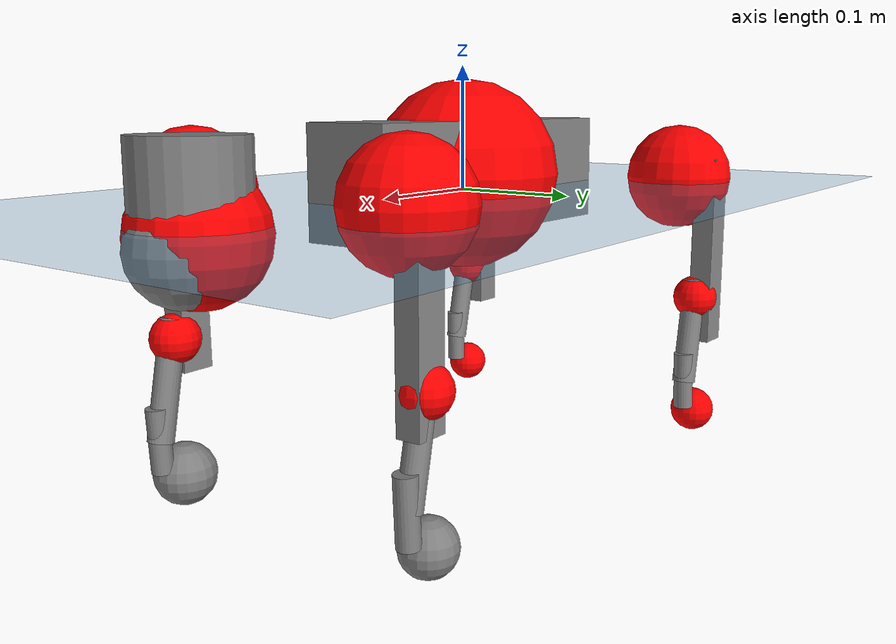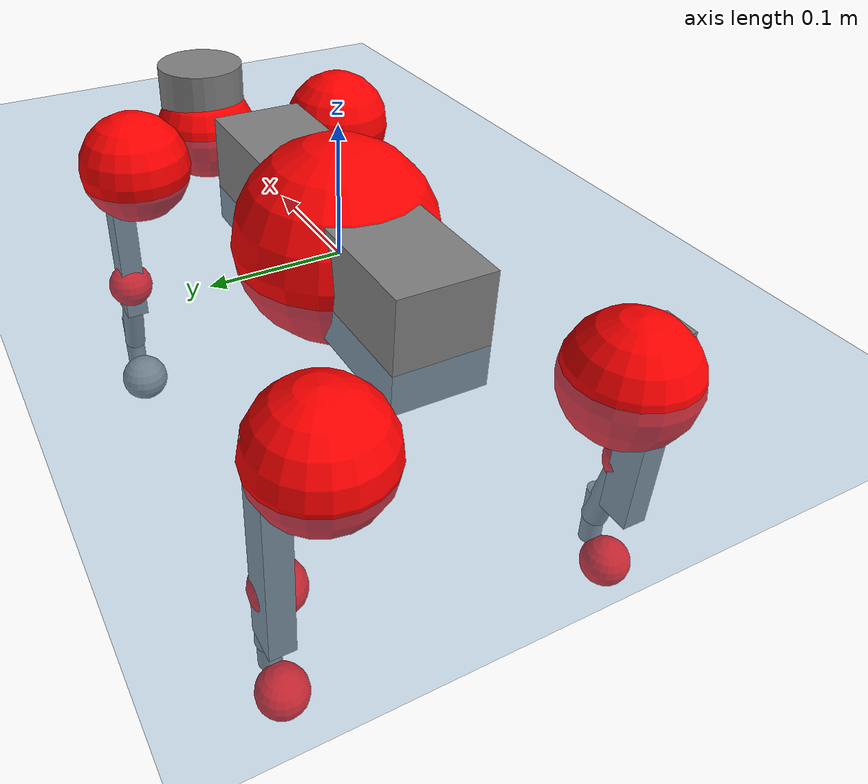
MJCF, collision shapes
<mujoco model="go2">
  <compiler angle="radian" assetdir="assets" balanceinertia="true" inertiafromgeom="false"/>

  <option timestep="0.005" density="1.2" viscosity="2e-05"/>

  <size nkey="1"/>

  <visual>
    <quality shadowsize="8192"/>
    <map shadowclip="0.5"/>
  </visual>

  <default>
    <default class="/">
      <geom contype="0" conaffinity="0" group="1" solref="-1000 -80"/>
      <site size="0.01 0.005 0.005" group="5"/>
      <general forcelimited="true" biastype="affine" gainprm="20" biasprm="0 -20 -0.5"/>
      <default class="go2">
        <joint armature="0.01" damping="0.01" frictionloss="0.2"/>
        <geom condim="1" margin="0.001"/>
        <default class="visual">
          <geom type="mesh" group="2"/>
        </default>
        <default class="collision">
          <geom group="3"/>
          <default class="foot">
            <geom size="0.022 0 0" condim="6" priority="1" friction="0.8 0.02 0.01" solimp="0.015 1 0.022"/>
          </default>
        </default>
        <default class="reward_collision_sphere">
          <geom group="5" rgba="1 0 0 1"/>
        </default>
      </default>
    </default>
  </default>

  <asset>
    <texture type="skybox" colorspace="auto" name="//unnamed_texture_0" builtin="gradient" rgb1="0.95 0.95 0.95" rgb2="0.95 0.95 0.95" width="100" height="600"/>
    <texture type="2d" colorspace="auto" name="texplane" builtin="checker" rgb1="0.345 0.575 0.748" rgb2="0.345 0.575 0.748" markrgb="1 1 1" width="512" height="512"/>
    <material name="MatPlane" class="/" texture="texplane" texuniform="true" texrepeat="2 2" specular="0.9"/>
    <material name="metal" class="/" rgba="0.9 0.95 0.95 1"/>
    <material name="black" class="/" rgba="0 0 0 1"/>
    <material name="white" class="/"/>
    <material name="gray" class="/" rgba="0.671705 0.692426 0.77427 1"/>
    <mesh name="base_0" class="/" file="base_0.obj"/>
    <mesh name="base_1" class="/" file="base_1.obj"/>
    <mesh name="base_2" class="/" file="base_2.obj"/>
    <mesh name="base_3" class="/" file="base_3.obj"/>
    <mesh name="base_4" class="/" file="base_4.obj"/>
    <mesh name="hip_0" class="/" file="hip_0.obj"/>
    <mesh name="hip_1" class="/" file="hip_1.obj"/>
    <mesh name="thigh_0" class="/" file="thigh_0.obj"/>
    <mesh name="thigh_1" class="/" file="thigh_1.obj"/>
    <mesh name="thigh_mirror_0" class="/" file="thigh_mirror_0.obj"/>
    <mesh name="thigh_mirror_1" class="/" file="thigh_mirror_1.obj"/>
    <mesh name="calf_0" class="/" file="calf_0.obj"/>
    <mesh name="calf_1" class="/" file="calf_1.obj"/>
    <mesh name="calf_mirror_0" class="/" file="calf_mirror_0.obj"/>
    <mesh name="calf_mirror_1" class="/" file="calf_mirror_1.obj"/>
    <mesh name="foot" class="/" file="foot.obj"/>
  </asset>

  <worldbody>
    <geom name="floor" class="/" size="100 100 0.125" type="plane" group="0" material="MatPlane"/>
    <light name="toplight_shadow" class="/" pos="0 0 5" dir="0.0990148 0.0990148 -0.990148" type="directional" ambient="0.04 0.04 0.04" diffuse="0.55 0.55 0.55" specular="0.12 0.12 0.12"/>
    <light name="toplight_fill" class="/" pos="0 0 5" dir="0.0990148 0.0990148 -0.990148" type="directional" castshadow="false" ambient="0.04 0.04 0.04" diffuse="0.3 0.3 0.3" specular="0.08 0.08 0.08"/>
    <body name="trunk" childclass="go2" pos="-0.00056266 0.00143681 0.0126989" quat="0.999983 0.00316962 -0.00489691 0.000304647">
      <inertial pos="0.0211994 -0.00981738 -0.00199735" quat="0.0144971 0.748273 0.0165038 0.663027" mass="2.95922" diaginertia="0.0833635 0.0345431 0.000629709"/>
      <joint name="//unnamed_joint_0" type="free" armature="0" damping="0" frictionloss="0"/>
      <geom name="//unnamed_geom_1" class="visual" material="black" mesh="base_0"/>
      <geom name="//unnamed_geom_2" class="visual" material="black" mesh="base_1"/>
      <geom name="//unnamed_geom_3" class="visual" material="black" mesh="base_2"/>
      <geom name="//unnamed_geom_4" class="visual" material="white" mesh="base_3"/>
      <geom name="//unnamed_geom_5" class="visual" material="gray" mesh="base_4"/>
      <geom name="trunk_1" class="collision" size="0.145588 0.0361842 0.0441176" type="box"/>
      <geom name="trunk_2" class="collision" size="0.0386996 0.0348297" pos="0.280967 0 0.00497882" type="cylinder"/>
      <geom name="trunk_3" class="collision" size="0.0363777" pos="0.288854 0 -0.0298729"/>
      <geom name="//unnamed_geom_9" class="reward_collision_sphere" size="0.0773993"/>
      <geom name="//unnamed_geom_10" class="reward_collision_sphere" size="0.0464396" pos="0.276038 0 -0.0224047"/>
      <site name="imu" pos="-0.0332352 -0.0339463 0.0674647" size="0.00773993"/>
      <camera name="track" pos="0 -1.67649 0" quat="0.707107 0.707107 0 0" mode="trackcom"/>
      <camera name="ego_camera" pos="0.307585 0 0.0224047" quat="-0.5 -0.5 0.5 0.5"/>
      <body name="FL_hip" pos="0.189388 0.0352148 -0.00471834" quat="1 -8.22605e-05 -2.62587e-05 6.64958e-05">
        <inertial pos="0.00585387 0.0038049 0.0122302" quat="0.488555 0.511697 0.543671 0.451555" mass="0.337632" diaginertia="0.000794786 0.00027724 1.59486e-05"/>
        <joint name="FL_hip_joint" pos="0 0 0" axis="0.998621 -0.0518996 0.00785413" stiffness="0.0436042" range="-1.0666 0.922935" armature="0.00755491" damping="0.0512011" frictionloss="0.107326"/>
        <geom name="//unnamed_geom_11" class="visual" material="metal" mesh="hip_0"/>
        <geom name="//unnamed_geom_12" class="visual" material="gray" mesh="hip_1"/>
        <geom name="//unnamed_geom_13" class="collision" size="0.0356037 0.0154799" pos="0 0.0670598 0" quat="0.707107 0.707107 0 0" type="cylinder"/>
        <geom name="//unnamed_geom_14" class="reward_collision_sphere" size="0.0464396" pos="0 0.0586773 0"/>
        <body name="FL_thigh" pos="0.00960653 0.0750491 -0.00946361" quat="1 0.000100967 0.000557502 0.000758041">
          <inertial pos="-0.00241511 -0.0175428 -0.0168056" quat="0.821374 0.0948956 -0.0162115 0.562207" mass="0.587985" diaginertia="0.00613034 0.00272532 3.41123e-05"/>
          <joint name="FL_thigh_joint" pos="0 0 0" axis="0.000421185 0.999966 -0.00828658" stiffness="0.00726847" range="-1.44198 3.53233" armature="0.010622" damping="0" frictionloss="0.15643"/>
          <geom name="//unnamed_geom_15" class="visual" material="metal" mesh="thigh_0"/>
          <geom name="//unnamed_geom_16" class="visual" material="gray" mesh="thigh_1"/>
          <geom name="//unnamed_geom_17" class="collision" size="0.0824302 0.00948141 0.0131579" pos="0 0 -0.0530244" quat="0.707107 0 0.707107 0" type="box"/>
          <body name="FL_calf" pos="-0.00435802 0.000781629 -0.106541" quat="1 -6.39955e-05 -0.000360991 0.000247541">
            <inertial pos="0.0200586 0.0115027 -0.0703509" quat="0.709842 0.00264011 -0.00811222 0.704309" mass="0.112518" diaginertia="0.00156603 0.000597507 1.57647e-06"/>
            <joint name="FL_calf_joint" pos="0 0 0" axis="-0.0158609 0.999785 0.0133411" stiffness="0.021935" range="-2.45091 -0.973438" armature="0.00918763" damping="0.0182357" frictionloss="0.0534458"/>
            <geom name="//unnamed_geom_18" class="visual" material="gray" mesh="calf_0"/>
            <geom name="//unnamed_geom_19" class="visual" material="black" mesh="calf_1"/>
            <geom name="FL_calf0" class="collision" size="0.00928792 0.0464396" pos="0.0078868 0 -0.0298729" quat="0.994493 0 -0.104807 0" type="cylinder"/>
            <geom name="//unnamed_geom_21" class="collision" size="0.00851392 0.0251548" pos="0.019717 0 -0.0736865" quat="0.999688 0 0.0249974 0" type="cylinder"/>
            <geom name="//unnamed_geom_22" class="visual" pos="0 0 -0.106049" quat="1 0 0 0" material="black" mesh="foot"/>
            <geom name="FL_foot" class="foot" size="0.0212529" pos="-0.0019717 0 -0.106049"/>
            <geom name="//unnamed_geom_24" class="reward_collision_sphere" size="0.0193498"/>
            <geom name="//unnamed_geom_25" class="reward_collision_sphere" size="0.0193498" pos="-0.0019717 0 -0.106049"/>
            <site name="FL_foot" class="foot" pos="-0.0019717 0 -0.106049" size="0.00773993"/>
          </body>
        </body>
      </body>
      <body name="FR_hip" pos="0.197241 -0.0411354 -0.00354396" quat="0.999978 0.00513682 0.00288414 0.00288518">
        <inertial pos="-0.000783161 -0.00298566 0.00298193" quat="0.551279 0.498126 0.468595 0.477892" mass="0.274606" diaginertia="0.000842808 0.000252919 1.51461e-05"/>
        <joint name="FR_hip_joint" pos="0 0 0" axis="0.999505 -0.0202571 -0.0240541" stiffness="0.0501413" range="-0.795531 1.1699" armature="0.00687686" damping="0.0445987" frictionloss="0.0963329"/>
        <geom name="//unnamed_geom_26" class="visual" pos="0 2.96512e-09 1.2718e-07" quat="4.63268e-05 1 0 0" material="metal" mesh="hip_0"/>
        <geom name="//unnamed_geom_27" class="visual" pos="0 4.80682e-09 -3.14565e-07" quat="4.63268e-05 1 0 0" material="gray" mesh="hip_1"/>
        <geom name="//unnamed_geom_28" class="collision" size="0.0356037 0.0154799" pos="0 -0.0670598 0" quat="0.707107 0.707107 0 0" type="cylinder"/>
        <geom name="//unnamed_geom_29" class="reward_collision_sphere" size="0.0464396" pos="0 -0.0586773 0"/>
        <body name="FR_thigh" pos="0.00170133 -0.0729636 -0.000860802" quat="0.999997 -0.00205342 0.000265528 0.00152139">
          <inertial pos="0.00220271 0.0205204 -0.012829" quat="0.555045 -0.00707839 0.0902153 0.826884" mass="0.468814" diaginertia="0.00555253 0.00268421 2.49506e-05"/>
          <joint name="FR_thigh_joint" pos="0 0 0" axis="0.00351103 -0.999994 0.000556784" range="-3.50911 1.70316" armature="0.00996245" damping="0.0720973" frictionloss="0.227652"/>
          <geom name="//unnamed_geom_30" class="visual" material="metal" mesh="thigh_mirror_0"/>
          <geom name="//unnamed_geom_31" class="visual" material="gray" mesh="thigh_mirror_1"/>
          <geom name="//unnamed_geom_32" class="collision" size="0.0824302 0.00948141 0.0131579" pos="0 0 -0.0530244" quat="0.707107 0 0.707107 0" type="box"/>
          <body name="FR_calf" pos="0.0125379 0.000640368 -0.109797" quat="1 -0.000783182 -0.000522661 0.000178664">
            <inertial pos="0.00895923 0.0118658 -0.0798737" quat="0.734624 -0.0526204 -0.00473673 0.676414" mass="0.129714" diaginertia="0.00157596 0.000599853 2.03058e-06"/>
            <joint name="FR_calf_joint" pos="0 0 0" axis="-0.00994953 -0.999837 -0.0150683" stiffness="0.0103508" range="0.817813 2.73642" armature="0.00767329" damping="0.0463535" frictionloss="0.198782"/>
            <geom name="//unnamed_geom_33" class="visual" material="gray" mesh="calf_mirror_0"/>
            <geom name="//unnamed_geom_34" class="visual" material="black" mesh="calf_mirror_1"/>
            <geom name="FR_calf0" class="collision" size="0.0100619 0.0464396" pos="0.0098585 0 -0.0298729" quat="0.995004 0 -0.0998334 0" type="cylinder"/>
            <geom name="//unnamed_geom_36" class="collision" size="0.00851392 0.0251548" pos="0.019717 0 -0.0736865" quat="0.999688 0 0.0249974 0" type="cylinder"/>
            <geom name="//unnamed_geom_37" class="visual" pos="0 0 -0.106049" quat="1 0 0 0" material="black" mesh="foot"/>
            <geom name="FR_foot" class="foot" size="0.0243223" pos="-0.0019717 0 -0.106049"/>
            <geom name="//unnamed_geom_39" class="reward_collision_sphere" size="0.0193498"/>
            <geom name="//unnamed_geom_40" class="reward_collision_sphere" size="0.0193498" pos="-0.0019717 0 -0.106049"/>
            <site name="FR_foot" class="foot" pos="-0.0019717 0 -0.106049" size="0.00773993"/>
          </body>
        </body>
      </body>
      <body name="RL_hip" pos="-0.188556 0.0469149 -0.00864268" quat="0.999999 0.000710354 0.000995786 0.00119754">
        <inertial pos="0.00869015 0.0127789 0.0126995" quat="0.496524 0.513685 0.502365 0.487054" mass="0.341943" diaginertia="0.000954964 0.000252187 1.77376e-05"/>
        <joint name="RL_hip_joint" pos="0 0 0" axis="-0.998621 -0.00405107 -0.0523373" range="-0.834963 0.818139" armature="0.00367658" damping="0.00292906" frictionloss="0.145034"/>
        <geom name="//unnamed_geom_41" class="visual" pos="-4.25098e-09 0 -8.3329e-07" quat="4.63268e-05 0 1 0" material="metal" mesh="hip_0"/>
        <geom name="//unnamed_geom_42" class="visual" pos="-6.89134e-09 0 -7.39009e-07" quat="4.63268e-05 0 1 0" material="gray" mesh="hip_1"/>
        <geom name="//unnamed_geom_43" class="collision" size="0.0356037 0.0154799" pos="0 0.0670598 0" quat="0.707107 0.707107 0 0" type="cylinder"/>
        <geom name="//unnamed_geom_44" class="reward_collision_sphere" size="0.0464396" pos="0 0.0586773 0"/>
        <body name="RL_thigh" pos="0.00194955 0.0904607 -0.0126178" quat="0.999991 -0.000847711 -0.00372572 -0.00198012">
          <inertial pos="-0.0171357 -0.010075 -0.00297313" quat="0.830004 0.0841757 -0.0210504 0.550967" mass="0.436856" diaginertia="0.00390482 0.00197485 1.99594e-05"/>
          <joint name="RL_thigh_joint" pos="0 0 0" axis="0.0047209 0.997701 -0.0675994" range="-0.373921 4.54701" armature="0.00747742" damping="0.0727165" frictionloss="0.114409"/>
          <geom name="//unnamed_geom_45" class="visual" material="metal" mesh="thigh_0"/>
          <geom name="//unnamed_geom_46" class="visual" material="gray" mesh="thigh_1"/>
          <geom name="//unnamed_geom_47" class="collision" size="0.0824302 0.00948141 0.0131579" pos="0 0 -0.0530244" quat="0.707107 0 0.707107 0" type="box"/>
          <body name="RL_calf" pos="0.0074154 -0.00663123 -0.0958799" quat="0.999989 0.00429028 0.00180172 -0.000271846">
            <inertial pos="0.0185487 -0.00863012 -0.0574639" quat="0.705318 -0.0278492 -0.0519296 0.706438" mass="0.124762" diaginertia="0.00155226 0.000719018 1.68598e-06"/>
            <joint name="RL_calf_joint" pos="0 0 0" axis="-0.00280689 0.999943 -0.0102906" stiffness="0.00664508" range="-2.74944 -0.561553" armature="0.00357126" damping="0.0686971" frictionloss="0.146253"/>
            <geom name="//unnamed_geom_48" class="visual" material="gray" mesh="calf_0"/>
            <geom name="//unnamed_geom_49" class="visual" material="black" mesh="calf_1"/>
            <geom name="RL_calf0" class="collision" size="0.0100619 0.0464396" pos="0.0098585 0 -0.0298729" quat="0.995004 0 -0.0998334 0" type="cylinder"/>
            <geom name="//unnamed_geom_51" class="collision" size="0.00851392 0.0251548" pos="0.019717 0 -0.0736865" quat="0.999688 0 0.0249974 0" type="cylinder"/>
            <geom name="//unnamed_geom_52" class="visual" pos="0 0 -0.106049" quat="1 0 0 0" material="black" mesh="foot"/>
            <geom name="RL_foot" class="foot" size="0.0144074" pos="-0.0019717 0 -0.106049"/>
            <geom name="//unnamed_geom_54" class="reward_collision_sphere" size="0.0193498"/>
            <geom name="//unnamed_geom_55" class="reward_collision_sphere" size="0.0193498" pos="-0.0019717 0 -0.106049"/>
            <site name="RL_foot" class="foot" pos="-0.0019717 0 -0.106049" size="0.00773993"/>
          </body>
        </body>
      </body>
      <body name="RR_hip" pos="-0.204366 -0.0422083 -0.0195776" quat="0.999999 0.00029699 0.000140239 0.00113205">
        <inertial pos="0.0150178 0.00538564 -0.00305039" quat="0.497608 0.504393 0.453759 0.540441" mass="0.310487" diaginertia="0.000588732 0.000210689 1.13987e-05"/>
        <joint name="RR_hip_joint" pos="0 0 0" axis="-0.997618 -0.0633741 -0.027254" stiffness="0.000400465" range="-0.939662 1.03557" armature="0.00752679" damping="0.0232275" frictionloss="0.0497824"/>
        <geom name="//unnamed_geom_56" class="visual" pos="4.24587e-09 2.96512e-09 -9.6047e-07" quat="2.14617e-09 4.63268e-05 4.63268e-05 -1" material="metal" mesh="hip_0"/>
        <geom name="//unnamed_geom_57" class="visual" pos="6.90398e-09 4.80682e-09 -4.24444e-07" quat="2.14617e-09 4.63268e-05 4.63268e-05 -1" material="gray" mesh="hip_1"/>
        <geom name="//unnamed_geom_58" class="collision" size="0.0356037 0.0154799" pos="0 -0.0670598 0" quat="0.707107 0.707107 0 0" type="cylinder"/>
        <geom name="//unnamed_geom_59" class="reward_collision_sphere" size="0.0464396" pos="0 -0.0586773 0"/>
        <body name="RR_thigh" pos="0.000449693 -0.0837633 0.00268786" quat="1 -7.42106e-05 -8.56331e-06 -0.000163672">
          <inertial pos="-0.00897686 0.0249222 -0.00496353" quat="0.574183 -0.0459346 0.0761344 0.813884" mass="0.648955" diaginertia="0.00501944 0.00247359 2.72203e-05"/>
          <joint name="RR_thigh_joint" pos="0 0 0" axis="0.0244354 -0.999692 0.00432568" range="-4.51856 0.707347" armature="0.00866086" damping="0.0230929" frictionloss="0.175748"/>
          <geom name="//unnamed_geom_60" class="visual" material="metal" mesh="thigh_mirror_0"/>
          <geom name="//unnamed_geom_61" class="visual" material="gray" mesh="thigh_mirror_1"/>
          <geom name="//unnamed_geom_62" class="collision" size="0.0824302 0.00948141 0.0131579" pos="0 0 -0.0530244" quat="0.707107 0 0.707107 0" type="box"/>
          <body name="RR_calf" pos="0.01192 -0.00921026 -0.0974598" quat="0.999976 0.000166963 -0.00594368 -0.00356124">
            <inertial pos="0.00263323 -0.000133516 -0.0722553" quat="0.684285 0.0460406 0.00704895 0.727726" mass="0.104139" diaginertia="0.00128329 0.000509918 1.69969e-06"/>
            <joint name="RR_calf_joint" pos="0 0 0" axis="-0.00871985 -0.997837 0.065152" stiffness="0.0599501" range="0.626437 2.77306" armature="0.00827263" damping="0.0626455" frictionloss="0.176822"/>
            <geom name="//unnamed_geom_63" class="visual" material="gray" mesh="calf_mirror_0"/>
            <geom name="//unnamed_geom_64" class="visual" material="black" mesh="calf_mirror_1"/>
            <geom name="RR_calf0" class="collision" size="0.0100619 0.0464396" pos="0.0098585 0 -0.0298729" quat="0.995004 0 -0.0998334 0" type="cylinder"/>
            <geom name="//unnamed_geom_66" class="collision" size="0.00851392 0.0251548" pos="0.019717 0 -0.0736865" quat="0.999688 0 0.0249974 0" type="cylinder"/>
            <geom name="//unnamed_geom_67" class="visual" pos="0 0 -0.106049" quat="1 0 0 0" material="black" mesh="foot"/>
            <geom name="RR_foot" class="foot" size="0.0189206" pos="-0.0019717 0 -0.106049"/>
            <geom name="//unnamed_geom_69" class="reward_collision_sphere" size="0.0193498"/>
            <geom name="//unnamed_geom_70" class="reward_collision_sphere" size="0.0193498" pos="-0.0019717 0 -0.106049"/>
            <site name="RR_foot" class="foot" pos="-0.0019717 0 -0.106049" size="0.00773993"/>
          </body>
        </body>
      </body>
    </body>
  </worldbody>

  <contact>
    <pair class="/" geom1="floor" geom2="FL_foot" name="//unnamed_contact_0"/>
    <pair class="/" geom1="floor" geom2="FR_foot" name="//unnamed_contact_1"/>
    <pair class="/" geom1="floor" geom2="RL_foot" name="//unnamed_contact_2"/>
    <pair class="/" geom1="floor" geom2="RR_foot" name="//unnamed_contact_3"/>
  </contact>

  <actuator>
    <general name="FL_hip" class="/" joint="FL_hip_joint" forcerange="-17.2652 17.2652" gainprm="14.8083" biasprm="0 -14.8083 -0.413796"/>
    <general name="FL_thigh" class="/" joint="FL_thigh_joint" forcerange="-17.3406 17.3406" gainprm="14.8083" biasprm="0 -14.8083 -0.413796"/>
    <general name="FL_calf" class="/" joint="FL_calf_joint" forcerange="-26.4855 26.4855" gainprm="14.8083" biasprm="0 -14.8083 -0.413796"/>
    <general name="FR_hip" class="/" joint="FR_hip_joint" forcerange="-19.1358 19.1358" gainprm="14.8083" biasprm="0 -14.8083 -0.413796"/>
    <general name="FR_thigh" class="/" joint="FR_thigh_joint" forcerange="-14.0153 14.0153" gainprm="14.8083" biasprm="0 -14.8083 -0.413796"/>
    <general name="FR_calf" class="/" joint="FR_calf_joint" forcerange="-33.1757 33.1757" gainprm="14.8083" biasprm="0 -14.8083 -0.413796"/>
    <general name="RL_hip" class="/" joint="RL_hip_joint" forcerange="-17.8909 17.8909" gainprm="14.8083" biasprm="0 -14.8083 -0.413796"/>
    <general name="RL_thigh" class="/" joint="RL_thigh_joint" forcerange="-26.9848 26.9848" gainprm="14.8083" biasprm="0 -14.8083 -0.413796"/>
    <general name="RL_calf" class="/" joint="RL_calf_joint" forcerange="-20.4367 20.4367" gainprm="14.8083" biasprm="0 -14.8083 -0.413796"/>
    <general name="RR_hip" class="/" joint="RR_hip_joint" forcerange="-18.8 18.8" gainprm="14.8083" biasprm="0 -14.8083 -0.413796"/>
    <general name="RR_thigh" class="/" joint="RR_thigh_joint" forcerange="-21.026 21.026" gainprm="14.8083" biasprm="0 -14.8083 -0.413796"/>
    <general name="RR_calf" class="/" joint="RR_calf_joint" forcerange="-25.9518 25.9518" gainprm="14.8083" biasprm="0 -14.8083 -0.413796"/>
  </actuator>

  <sensor>
    <gyro site="imu" name="imu_angular_velocity"/>
    <velocimeter site="imu" name="imu_linear_velocity"/>
    <framelinvel objtype="site" objname="FL_foot" name="FL_foot_global_linear_velocity"/>
    <framelinvel objtype="site" objname="FR_foot" name="FR_foot_global_linear_velocity"/>
    <framelinvel objtype="site" objname="RL_foot" name="RL_foot_global_linear_velocity"/>
    <framelinvel objtype="site" objname="RR_foot" name="RR_foot_global_linear_velocity"/>
  </sensor>

  <keyframe>
    <key name="home" qpos="0 0 0.325 1 0 0 0 0.1 0.8 -1.5 -0.1 -0.8 1.5 -0.1 0.8 -1.5 0.1 -0.8 1.5"/>
  </keyframe>
</mujoco>
